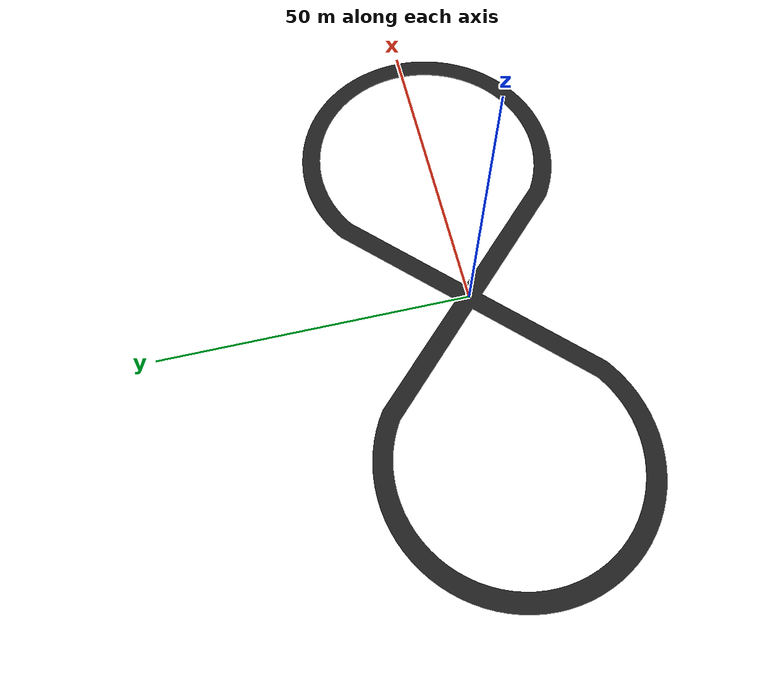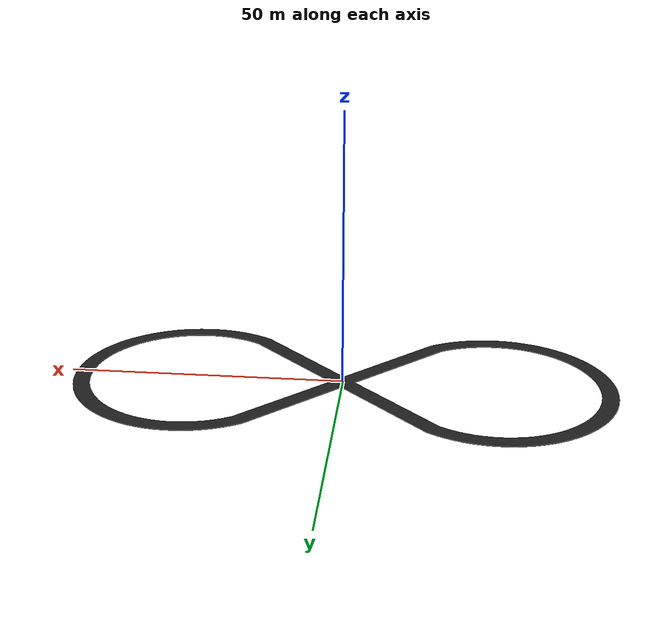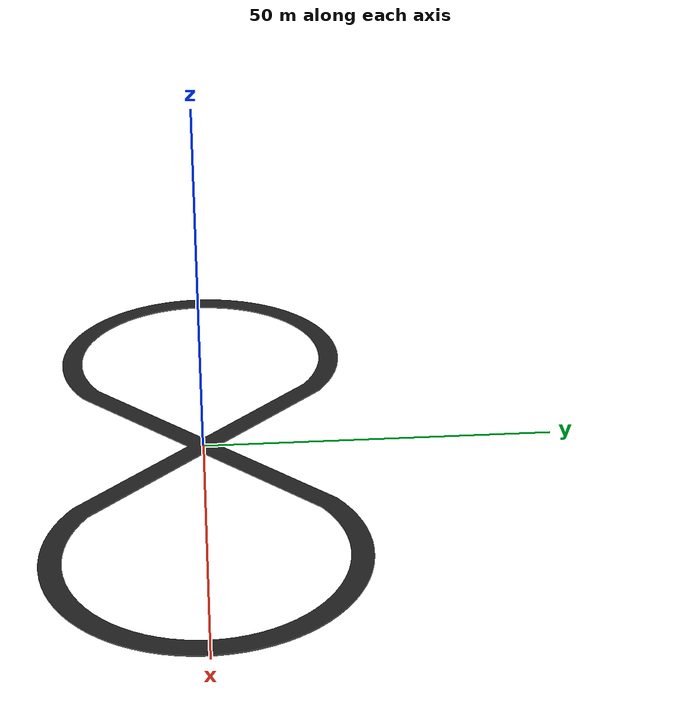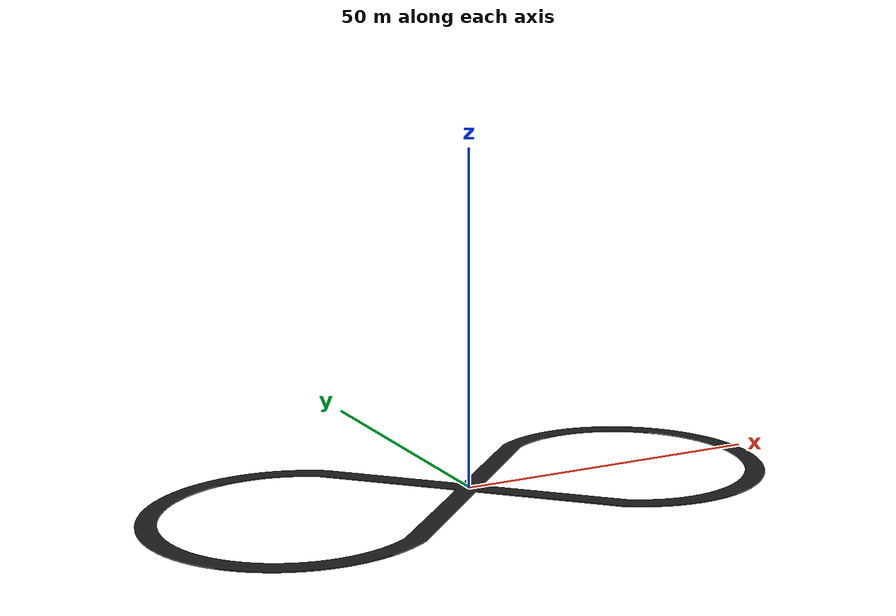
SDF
<sdf version='1.4'>
  <model name='road'>
    <link name='base_footprint'>
      <pose>0 0 0 0 -0 0</pose>
      <inertial>
        <pose>0 0 0 0 -0 0</pose>
        <mass>204100</mass>
        <inertia>
          <ixx>1.64481e+08</ixx>
          <ixy>0</ixy>
          <ixz>0</ixz>
          <iyy>1.959e+08</iyy>
          <iyz>0</iyz>
          <izz>3.14195e+07</izz>
        </inertia>
      </inertial>
      <collision name='base_footprint_collision_base_link'>
        <pose>0 0 0 1.5708 -0 0</pose>
        <geometry>
          <mesh>
            <scale>0.001 0.001 0.001</scale>
            <uri>model://challenge_1_road/meshes/challenge_1_road.stl</uri>
          </mesh>
        </geometry>
      </collision>
      <visual name='base_footprint_visual_base_link'>
        <pose>0 0 0 1.5708 -0 0</pose>
        <geometry>
          <mesh>
            <scale>0.001 0.001 0.001</scale>
            <uri>model://challenge_1_road/meshes/challenge_1_road.stl</uri>
          </mesh>
        </geometry>
        <material>
          <script>
            <uri>file://media/materials/scripts/gazebo.material</uri>
            <name>Gazebo/Black</name>
          </script>
        </material>
      </visual>
      <velocity_decay>
        <linear>0</linear>
        <angular>0</angular>
      </velocity_decay>
    </link>
  </model>
</sdf>
